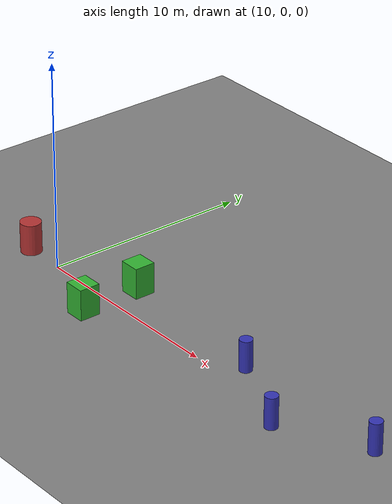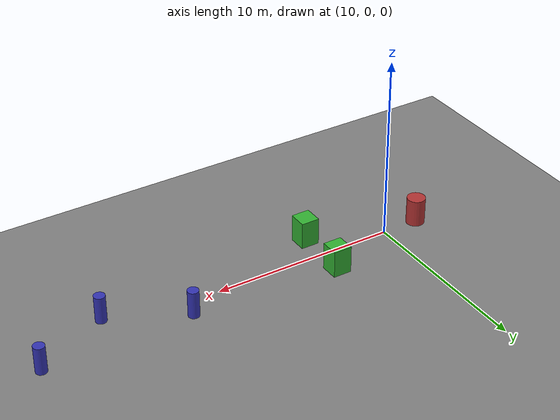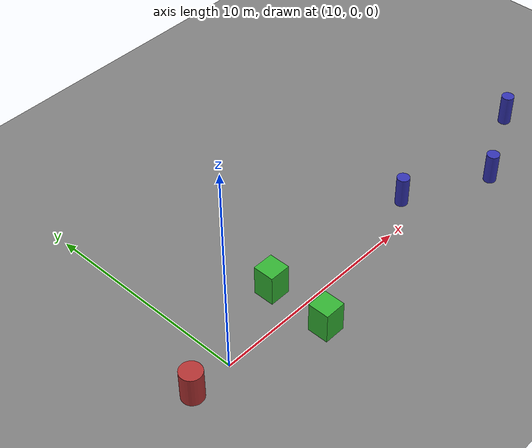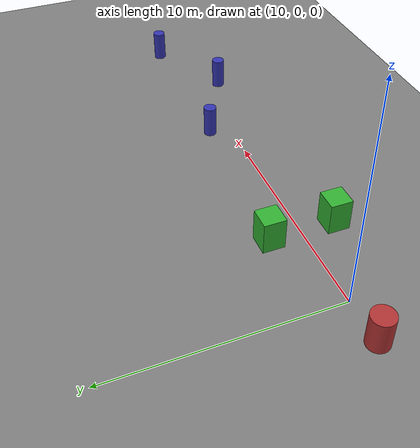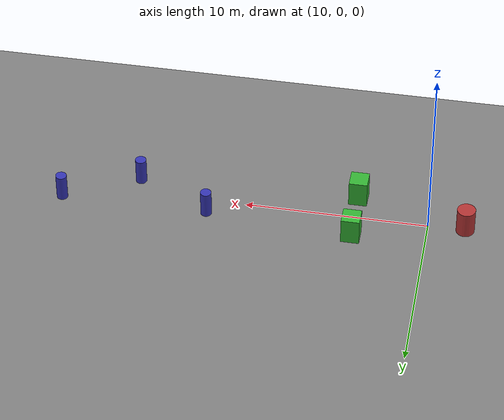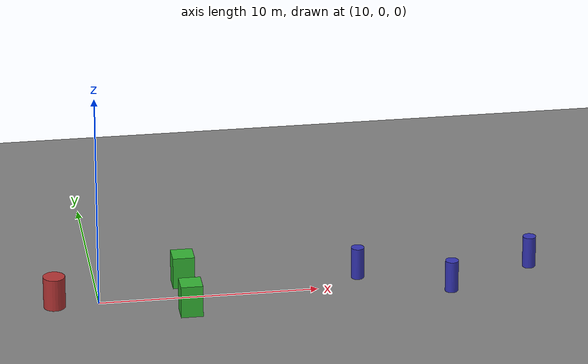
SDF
<sdf version="1.10">
 <world name="iris_avoidance">
  <physics name="1ms" type="ignored">
   <max_step_size>0.001</max_step_size>
   <real_time_factor>1.0</real_time_factor>
  </physics>
  <plugin filename="gz-sim-physics-system" name="gz::sim::systems::Physics"/>
  <plugin filename="gz-sim-user-commands-system" name="gz::sim::systems::UserCommands"/>
  <plugin filename="gz-sim-scene-broadcaster-system" name="gz::sim::systems::SceneBroadcaster"/>
  <plugin filename="gz-sim-sensors-system" name="gz::sim::systems::Sensors">
   <render_engine>ogre2</render_engine>
  </plugin>
  <light type="directional" name="sun">
   <pose>0 0 10 0 0 0</pose>
   <diffuse>1 1 1 1</diffuse>
   <specular>0.4 0.4 0.4 1</specular>
   <direction>-0.5 0.1 -0.9</direction>
  </light>
  <model name="ground_plane">
   <static>true</static>
   <link name="link">
    <collision name="collision">
     <geometry><plane><normal>0 0 1</normal><size>60 60</size></plane></geometry>
    </collision>
    <visual name="visual">
     <geometry><plane><normal>0 0 1</normal><size>60 60</size></plane></geometry>
     <material><ambient>0.5 0.5 0.5 1</ambient><diffuse>0.5 0.5 0.5 1</diffuse></material>
    </visual>
   </link>
  </model>
  <model name="cyl_ahead">
   <static>true</static>
   <pose>8 0 0.75 0 0 0</pose>
   <link name="link">
    <collision name="c">
     <geometry><cylinder><radius>0.5</radius><length>1.5</length></cylinder></geometry>
    </collision>
    <visual name="v">
     <geometry><cylinder><radius>0.5</radius><length>1.5</length></cylinder></geometry>
     <material><diffuse>0.7 0.2 0.2 1</diffuse></material>
    </visual>
   </link>
  </model>
  <model name="door_left">
   <static>true</static>
   <pose>14 1.5 0.75 0 0 0</pose>
   <link name="link">
    <collision name="c"><geometry><box><size>1 1 1.5</size></box></geometry></collision>
    <visual name="v">
     <geometry><box><size>1 1 1.5</size></box></geometry>
     <material><diffuse>0.2 0.7 0.2 1</diffuse></material>
    </visual>
   </link>
  </model>
  <model name="door_right">
   <static>true</static>
   <pose>14 -1.5 0.75 0 0 0</pose>
   <link name="link">
    <collision name="c"><geometry><box><size>1 1 1.5</size></box></geometry></collision>
    <visual name="v">
     <geometry><box><size>1 1 1.5</size></box></geometry>
     <material><diffuse>0.2 0.7 0.2 1</diffuse></material>
    </visual>
   </link>
  </model>
  <model name="slalom_1">
   <static>true</static>
   <pose>22 1.0 0.75 0 0 0</pose>
   <link name="link">
    <collision name="c">
     <geometry><cylinder><radius>0.3</radius><length>1.5</length></cylinder></geometry>
    </collision>
    <visual name="v">
     <geometry><cylinder><radius>0.3</radius><length>1.5</length></cylinder></geometry>
     <material><diffuse>0.2 0.2 0.7 1</diffuse></material>
    </visual>
   </link>
  </model>
  <model name="slalom_2">
   <static>true</static>
   <pose>26 -1.0 0.75 0 0 0</pose>
   <link name="link">
    <collision name="c">
     <geometry><cylinder><radius>0.3</radius><length>1.5</length></cylinder></geometry>
    </collision>
    <visual name="v">
     <geometry><cylinder><radius>0.3</radius><length>1.5</length></cylinder></geometry>
     <material><diffuse>0.2 0.2 0.7 1</diffuse></material>
    </visual>
   </link>
  </model>
  <model name="slalom_3">
   <static>true</static>
   <pose>30 1.0 0.75 0 0 0</pose>
   <link name="link">
    <collision name="c">
     <geometry><cylinder><radius>0.3</radius><length>1.5</length></cylinder></geometry>
    </collision>
    <visual name="v">
     <geometry><cylinder><radius>0.3</radius><length>1.5</length></cylinder></geometry>
     <material><diffuse>0.2 0.2 0.7 1</diffuse></material>
    </visual>
   </link>
  </model>
 </world>
</sdf>
